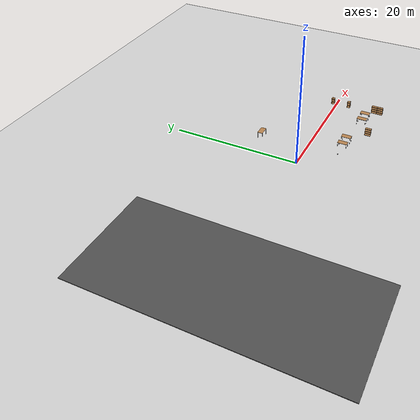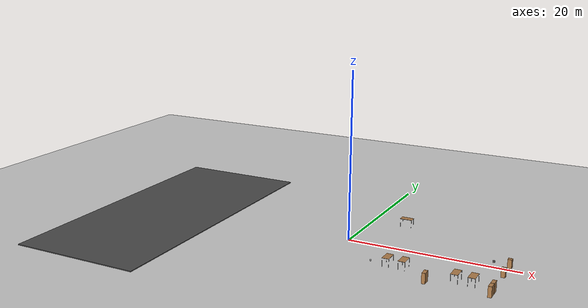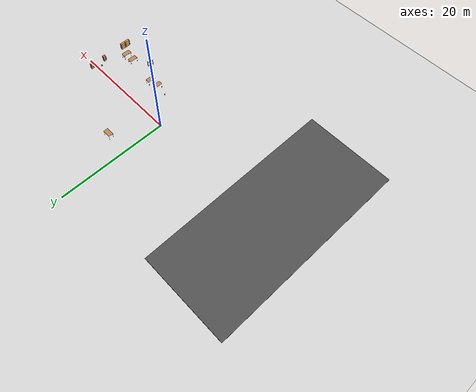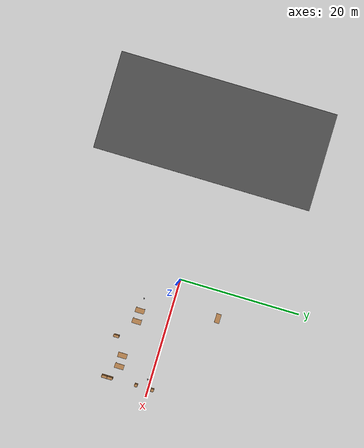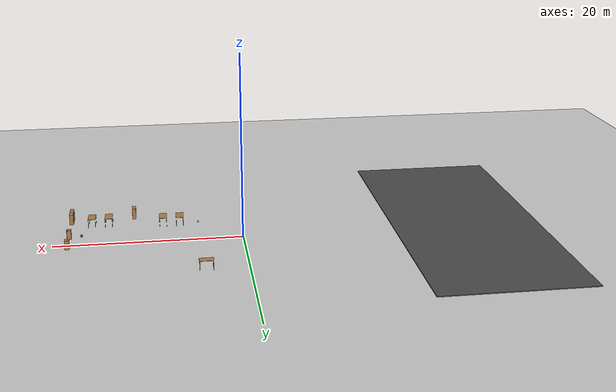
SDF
<sdf version="1.7">
 <world name="default">
  <model name="ground_plane">
   <static>1</static>
   <link name="link">
    <collision name="collision">
     <geometry><plane><normal>0 0 1</normal><size>100 100</size></plane></geometry>
     <surface>
      <contact><collide_bitmask>65535</collide_bitmask></contact>
      <friction><ode><mu>100</mu><mu2>50</mu2></ode></friction>
     </surface>
    </collision>
    <visual name="visual">
     <cast_shadows>0</cast_shadows>
     <geometry><plane><normal>0 0 1</normal><size>100 100</size></plane></geometry>
     <material>
      <script><uri>file://media/materials/scripts/gazebo.material</uri><name>Gazebo/Grey</name></script>
     </material>
    </visual>
   </link>
  </model>
  <model name="myBall">
   <link name="link_0">
    <inertial>
     <mass>10</mass>
     <inertia><ixx>1</ixx><ixy>0</ixy><ixz>0</ixz><iyy>1</iyy><iyz>0</iyz><izz>1</izz></inertia>
    </inertial>
    <visual name="visual">
     <geometry><sphere><radius>0.1</radius></sphere></geometry>
     <material>
      <lighting>1</lighting>
      <script><uri>file://media/materials/scripts/gazebo.material</uri><name>Gazebo/Grey</name></script>
      <shader type="pixel"><normal_map>__default__</normal_map></shader>
      <ambient>1 1 1 1</ambient>
      <diffuse>1 1 1 1</diffuse>
      <specular>1 1 1 1</specular>
      <emissive>1 1 1 1</emissive>
     </material>
    </visual>
    <collision name="collision">
     <geometry><sphere><radius>0.1</radius></sphere></geometry>
     <surface>
      <friction>
       <ode><mu>1</mu><mu2>1</mu2><fdir1>0 0 0</fdir1><slip1>0</slip1><slip2>0</slip2></ode>
       <torsional>
        <coefficient>1</coefficient>
        <patch_radius>0</patch_radius>
        <surface_radius>0</surface_radius>
        <use_patch_radius>1</use_patch_radius>
        <ode><slip>0</slip></ode>
       </torsional>
      </friction>
      <bounce><restitution_coefficient>0</restitution_coefficient><threshold>1e+06</threshold></bounce>
      <contact>
       <collide_without_contact>0</collide_without_contact>
       <collide_without_contact_bitmask>1</collide_without_contact_bitmask>
       <collide_bitmask>1</collide_bitmask>
       <ode>
        <soft_cfm>0</soft_cfm>
        <soft_erp>0.2</soft_erp>
        <kp>1e+13</kp>
        <kd>1</kd>
        <max_vel>0.01</max_vel>
        <min_depth>0</min_depth>
       </ode>
       <bullet>
        <split_impulse>1</split_impulse>
        <split_impulse_penetration_threshold>-0.01</split_impulse_penetration_threshold>
        <soft_cfm>0</soft_cfm>
        <soft_erp>0.2</soft_erp>
        <kp>1e+13</kp>
        <kd>1</kd>
       </bullet>
      </contact>
     </surface>
    </collision>
   </link>
   <static>0</static>
   <pose>4.64987 -4.7603 0.142835 0 -0 0</pose>
  </model>
  <model name="asphalt_plane">
   <static>1</static>
   <link name="link">
    <collision name="collision"><geometry><box><size>16.2909 36.5058 0.1</size></box></geometry></collision>
    <visual name="visual">
     <cast_shadows>0</cast_shadows>
     <geometry><box><size>16.2909 36.5058 0.1</size></box></geometry>
     <material>
      <script>
       <uri>model://asphalt_plane/materials/scripts</uri>
       <uri>model://asphalt_plane/materials/textures</uri>
       <name>vrc/asphalt</name>
      </script>
     </material>
    </visual>
   </link>
   <pose>-24.6928 -1.37234 0 0 -0 0</pose>
  </model>
  <model name="bookshelf_clone_2">
   <static>1</static>
   <link name="link">
    <inertial><mass>1</mass></inertial>
    <collision name="back">
     <pose>0 0.005 0.6 0 -0 0</pose>
     <geometry><box><size>0.9 0.01 1.2</size></box></geometry>
    </collision>
    <visual name="visual1">
     <pose>0 0.005 0.6 0 -0 0</pose>
     <geometry><box><size>0.9 0.01 1.2</size></box></geometry>
     <material>
      <script><uri>file://media/materials/scripts/gazebo.material</uri><name>Gazebo/Wood</name></script>
     </material>
    </visual>
    <collision name="left_side">
     <pose>0.45 -0.195 0.6 0 -0 0</pose>
     <geometry><box><size>0.02 0.4 1.2</size></box></geometry>
    </collision>
    <visual name="visual2">
     <pose>0.45 -0.195 0.6 0 -0 0</pose>
     <geometry><box><size>0.02 0.4 1.2</size></box></geometry>
     <material>
      <script><uri>file://media/materials/scripts/gazebo.material</uri><name>Gazebo/Wood</name></script>
     </material>
    </visual>
    <collision name="right_side">
     <pose>-0.45 -0.195 0.6 0 -0 0</pose>
     <geometry><box><size>0.02 0.4 1.2</size></box></geometry>
    </collision>
    <visual name="visual3">
     <pose>-0.45 -0.195 0.6 0 -0 0</pose>
     <geometry><box><size>0.02 0.4 1.2</size></box></geometry>
     <material>
      <script><uri>file://media/materials/scripts/gazebo.material</uri><name>Gazebo/Wood</name></script>
     </material>
    </visual>
    <collision name="bottom">
     <pose>0 -0.195 0.03 0 -0 0</pose>
     <geometry><box><size>0.88 0.4 0.06</size></box></geometry>
    </collision>
    <visual name="visual4">
     <pose>0 -0.195 0.03 0 -0 0</pose>
     <geometry><box><size>0.88 0.4 0.06</size></box></geometry>
     <material>
      <script><uri>file://media/materials/scripts/gazebo.material</uri><name>Gazebo/Wood</name></script>
     </material>
    </visual>
    <collision name="top">
     <pose>0 -0.195 1.19 0 -0 0</pose>
     <geometry><box><size>0.88 0.4 0.02</size></box></geometry>
    </collision>
    <visual name="visual5">
     <pose>0 -0.195 1.19 0 -0 0</pose>
     <geometry><box><size>0.88 0.4 0.02</size></box></geometry>
     <material>
      <script><uri>file://media/materials/scripts/gazebo.material</uri><name>Gazebo/Wood</name></script>
     </material>
    </visual>
    <collision name="low_shelf">
     <pose>0 -0.195 0.43 0 -0 0</pose>
     <geometry><box><size>0.88 0.4 0.02</size></box></geometry>
    </collision>
    <visual name="visual6">
     <pose>0 -0.195 0.43 0 -0 0</pose>
     <geometry><box><size>0.88 0.4 0.02</size></box></geometry>
     <material>
      <script><uri>file://media/materials/scripts/gazebo.material</uri><name>Gazebo/Wood</name></script>
     </material>
    </visual>
    <collision name="high_shelf">
     <pose>0 -0.195 0.8 0 -0 0</pose>
     <geometry><box><size>0.88 0.4 0.02</size></box></geometry>
    </collision>
    <visual name="visual7">
     <pose>0 -0.195 0.8 0 -0 0</pose>
     <geometry><box><size>0.88 0.4 0.02</size></box></geometry>
     <material>
      <script><uri>file://media/materials/scripts/gazebo.material</uri><name>Gazebo/Wood</name></script>
     </material>
    </visual>
   </link>
   <pose>18.6839 -7.31566 0 0 0 -1.57057</pose>
  </model>
  <model name="bookshelf_clone_3">
   <static>1</static>
   <link name="link">
    <inertial><mass>1</mass></inertial>
    <collision name="back">
     <pose>0 0.005 0.6 0 -0 0</pose>
     <geometry><box><size>0.9 0.01 1.2</size></box></geometry>
    </collision>
    <visual name="visual1">
     <pose>0 0.005 0.6 0 -0 0</pose>
     <geometry><box><size>0.9 0.01 1.2</size></box></geometry>
     <material>
      <script><uri>file://media/materials/scripts/gazebo.material</uri><name>Gazebo/Wood</name></script>
     </material>
    </visual>
    <collision name="left_side">
     <pose>0.45 -0.195 0.6 0 -0 0</pose>
     <geometry><box><size>0.02 0.4 1.2</size></box></geometry>
    </collision>
    <visual name="visual2">
     <pose>0.45 -0.195 0.6 0 -0 0</pose>
     <geometry><box><size>0.02 0.4 1.2</size></box></geometry>
     <material>
      <script><uri>file://media/materials/scripts/gazebo.material</uri><name>Gazebo/Wood</name></script>
     </material>
    </visual>
    <collision name="right_side">
     <pose>-0.45 -0.195 0.6 0 -0 0</pose>
     <geometry><box><size>0.02 0.4 1.2</size></box></geometry>
    </collision>
    <visual name="visual3">
     <pose>-0.45 -0.195 0.6 0 -0 0</pose>
     <geometry><box><size>0.02 0.4 1.2</size></box></geometry>
     <material>
      <script><uri>file://media/materials/scripts/gazebo.material</uri><name>Gazebo/Wood</name></script>
     </material>
    </visual>
    <collision name="bottom">
     <pose>0 -0.195 0.03 0 -0 0</pose>
     <geometry><box><size>0.88 0.4 0.06</size></box></geometry>
    </collision>
    <visual name="visual4">
     <pose>0 -0.195 0.03 0 -0 0</pose>
     <geometry><box><size>0.88 0.4 0.06</size></box></geometry>
     <material>
      <script><uri>file://media/materials/scripts/gazebo.material</uri><name>Gazebo/Wood</name></script>
     </material>
    </visual>
    <collision name="top">
     <pose>0 -0.195 1.19 0 -0 0</pose>
     <geometry><box><size>0.88 0.4 0.02</size></box></geometry>
    </collision>
    <visual name="visual5">
     <pose>0 -0.195 1.19 0 -0 0</pose>
     <geometry><box><size>0.88 0.4 0.02</size></box></geometry>
     <material>
      <script><uri>file://media/materials/scripts/gazebo.material</uri><name>Gazebo/Wood</name></script>
     </material>
    </visual>
    <collision name="low_shelf">
     <pose>0 -0.195 0.43 0 -0 0</pose>
     <geometry><box><size>0.88 0.4 0.02</size></box></geometry>
    </collision>
    <visual name="visual6">
     <pose>0 -0.195 0.43 0 -0 0</pose>
     <geometry><box><size>0.88 0.4 0.02</size></box></geometry>
     <material>
      <script><uri>file://media/materials/scripts/gazebo.material</uri><name>Gazebo/Wood</name></script>
     </material>
    </visual>
    <collision name="high_shelf">
     <pose>0 -0.195 0.8 0 -0 0</pose>
     <geometry><box><size>0.88 0.4 0.02</size></box></geometry>
    </collision>
    <visual name="visual7">
     <pose>0 -0.195 0.8 0 -0 0</pose>
     <geometry><box><size>0.88 0.4 0.02</size></box></geometry>
     <material>
      <script><uri>file://media/materials/scripts/gazebo.material</uri><name>Gazebo/Wood</name></script>
     </material>
    </visual>
   </link>
   <pose>18.6876 -6.40125 0 0 0 -1.57057</pose>
  </model>
  <model name="bookshelf_clone_8">
   <static>1</static>
   <link name="link">
    <inertial><mass>1</mass></inertial>
    <collision name="back">
     <pose>0 0.005 0.6 0 -0 0</pose>
     <geometry><box><size>0.9 0.01 1.2</size></box></geometry>
    </collision>
    <visual name="visual1">
     <pose>0 0.005 0.6 0 -0 0</pose>
     <geometry><box><size>0.9 0.01 1.2</size></box></geometry>
     <material>
      <script><uri>file://media/materials/scripts/gazebo.material</uri><name>Gazebo/Wood</name></script>
     </material>
    </visual>
    <collision name="left_side">
     <pose>0.45 -0.195 0.6 0 -0 0</pose>
     <geometry><box><size>0.02 0.4 1.2</size></box></geometry>
    </collision>
    <visual name="visual2">
     <pose>0.45 -0.195 0.6 0 -0 0</pose>
     <geometry><box><size>0.02 0.4 1.2</size></box></geometry>
     <material>
      <script><uri>file://media/materials/scripts/gazebo.material</uri><name>Gazebo/Wood</name></script>
     </material>
    </visual>
    <collision name="right_side">
     <pose>-0.45 -0.195 0.6 0 -0 0</pose>
     <geometry><box><size>0.02 0.4 1.2</size></box></geometry>
    </collision>
    <visual name="visual3">
     <pose>-0.45 -0.195 0.6 0 -0 0</pose>
     <geometry><box><size>0.02 0.4 1.2</size></box></geometry>
     <material>
      <script><uri>file://media/materials/scripts/gazebo.material</uri><name>Gazebo/Wood</name></script>
     </material>
    </visual>
    <collision name="bottom">
     <pose>0 -0.195 0.03 0 -0 0</pose>
     <geometry><box><size>0.88 0.4 0.06</size></box></geometry>
    </collision>
    <visual name="visual4">
     <pose>0 -0.195 0.03 0 -0 0</pose>
     <geometry><box><size>0.88 0.4 0.06</size></box></geometry>
     <material>
      <script><uri>file://media/materials/scripts/gazebo.material</uri><name>Gazebo/Wood</name></script>
     </material>
    </visual>
    <collision name="top">
     <pose>0 -0.195 1.19 0 -0 0</pose>
     <geometry><box><size>0.88 0.4 0.02</size></box></geometry>
    </collision>
    <visual name="visual5">
     <pose>0 -0.195 1.19 0 -0 0</pose>
     <geometry><box><size>0.88 0.4 0.02</size></box></geometry>
     <material>
      <script><uri>file://media/materials/scripts/gazebo.material</uri><name>Gazebo/Wood</name></script>
     </material>
    </visual>
    <collision name="low_shelf">
     <pose>0 -0.195 0.43 0 -0 0</pose>
     <geometry><box><size>0.88 0.4 0.02</size></box></geometry>
    </collision>
    <visual name="visual6">
     <pose>0 -0.195 0.43 0 -0 0</pose>
     <geometry><box><size>0.88 0.4 0.02</size></box></geometry>
     <material>
      <script><uri>file://media/materials/scripts/gazebo.material</uri><name>Gazebo/Wood</name></script>
     </material>
    </visual>
    <collision name="high_shelf">
     <pose>0 -0.195 0.8 0 -0 0</pose>
     <geometry><box><size>0.88 0.4 0.02</size></box></geometry>
    </collision>
    <visual name="visual7">
     <pose>0 -0.195 0.8 0 -0 0</pose>
     <geometry><box><size>0.88 0.4 0.02</size></box></geometry>
     <material>
      <script><uri>file://media/materials/scripts/gazebo.material</uri><name>Gazebo/Wood</name></script>
     </material>
    </visual>
   </link>
   <pose>11.8617 -7.31522 0 0 0 -1.57057</pose>
  </model>
  <model name="table_clone_clone">
   <static>1</static>
   <link name="link">
    <collision name="surface">
     <pose>0 0 1 0 -0 0</pose>
     <geometry><box><size>1.5 0.8 0.03</size></box></geometry>
     <surface><friction><ode><mu>0.6</mu><mu2>0.6</mu2></ode></friction></surface>
    </collision>
    <visual name="visual1">
     <pose>0 0 1 0 -0 0</pose>
     <geometry><box><size>1.5 0.8 0.03</size></box></geometry>
     <material>
      <script><uri>file://media/materials/scripts/gazebo.material</uri><name>Gazebo/Wood</name></script>
     </material>
    </visual>
    <collision name="front_left_leg">
     <pose>0.68 0.38 0.5 0 -0 0</pose>
     <geometry><cylinder><radius>0.02</radius><length>1</length></cylinder></geometry>
    </collision>
    <visual name="front_left_leg">
     <pose>0.68 0.38 0.5 0 -0 0</pose>
     <geometry><cylinder><radius>0.02</radius><length>1</length></cylinder></geometry>
     <material>
      <script><uri>file://media/materials/scripts/gazebo.material</uri><name>Gazebo/Grey</name></script>
     </material>
    </visual>
    <collision name="front_right_leg">
     <pose>0.68 -0.38 0.5 0 -0 0</pose>
     <geometry><cylinder><radius>0.02</radius><length>1</length></cylinder></geometry>
    </collision>
    <visual name="front_right_leg">
     <pose>0.68 -0.38 0.5 0 -0 0</pose>
     <geometry><cylinder><radius>0.02</radius><length>1</length></cylinder></geometry>
     <material>
      <script><uri>file://media/materials/scripts/gazebo.material</uri><name>Gazebo/Grey</name></script>
     </material>
    </visual>
    <collision name="back_right_leg">
     <pose>-0.68 -0.38 0.5 0 -0 0</pose>
     <geometry><cylinder><radius>0.02</radius><length>1</length></cylinder></geometry>
    </collision>
    <visual name="back_right_leg">
     <pose>-0.68 -0.38 0.5 0 -0 0</pose>
     <geometry><cylinder><radius>0.02</radius><length>1</length></cylinder></geometry>
     <material>
      <script><uri>file://media/materials/scripts/gazebo.material</uri><name>Gazebo/Grey</name></script>
     </material>
    </visual>
    <collision name="back_left_leg">
     <pose>-0.68 0.38 0.5 0 -0 0</pose>
     <geometry><cylinder><radius>0.02</radius><length>1</length></cylinder></geometry>
    </collision>
    <visual name="back_left_leg">
     <pose>-0.68 0.38 0.5 0 -0 0</pose>
     <geometry><cylinder><radius>0.02</radius><length>1</length></cylinder></geometry>
     <material>
      <script><uri>file://media/materials/scripts/gazebo.material</uri><name>Gazebo/Grey</name></script>
     </material>
    </visual>
   </link>
   <pose>4.31345 7.61468 0 0 -0 0</pose>
  </model>
  <model name="table_clone_0_clone_clone_1">
   <static>1</static>
   <link name="link">
    <collision name="surface">
     <pose>0 0 1 0 -0 0</pose>
     <geometry><box><size>1.5 0.8 0.03</size></box></geometry>
     <surface><friction><ode><mu>0.6</mu><mu2>0.6</mu2></ode></friction></surface>
    </collision>
    <visual name="visual1">
     <pose>0 0 1 0 -0 0</pose>
     <geometry><box><size>1.5 0.8 0.03</size></box></geometry>
     <material>
      <script><uri>file://media/materials/scripts/gazebo.material</uri><name>Gazebo/Wood</name></script>
     </material>
    </visual>
    <collision name="front_left_leg">
     <pose>0.68 0.38 0.5 0 -0 0</pose>
     <geometry><cylinder><radius>0.02</radius><length>1</length></cylinder></geometry>
    </collision>
    <visual name="front_left_leg">
     <pose>0.68 0.38 0.5 0 -0 0</pose>
     <geometry><cylinder><radius>0.02</radius><length>1</length></cylinder></geometry>
     <material>
      <script><uri>file://media/materials/scripts/gazebo.material</uri><name>Gazebo/Grey</name></script>
     </material>
    </visual>
    <collision name="front_right_leg">
     <pose>0.68 -0.38 0.5 0 -0 0</pose>
     <geometry><cylinder><radius>0.02</radius><length>1</length></cylinder></geometry>
    </collision>
    <visual name="front_right_leg">
     <pose>0.68 -0.38 0.5 0 -0 0</pose>
     <geometry><cylinder><radius>0.02</radius><length>1</length></cylinder></geometry>
     <material>
      <script><uri>file://media/materials/scripts/gazebo.material</uri><name>Gazebo/Grey</name></script>
     </material>
    </visual>
    <collision name="back_right_leg">
     <pose>-0.68 -0.38 0.5 0 -0 0</pose>
     <geometry><cylinder><radius>0.02</radius><length>1</length></cylinder></geometry>
    </collision>
    <visual name="back_right_leg">
     <pose>-0.68 -0.38 0.5 0 -0 0</pose>
     <geometry><cylinder><radius>0.02</radius><length>1</length></cylinder></geometry>
     <material>
      <script><uri>file://media/materials/scripts/gazebo.material</uri><name>Gazebo/Grey</name></script>
     </material>
    </visual>
    <collision name="back_left_leg">
     <pose>-0.68 0.38 0.5 0 -0 0</pose>
     <geometry><cylinder><radius>0.02</radius><length>1</length></cylinder></geometry>
    </collision>
    <visual name="back_left_leg">
     <pose>-0.68 0.38 0.5 0 -0 0</pose>
     <geometry><cylinder><radius>0.02</radius><length>1</length></cylinder></geometry>
     <material>
      <script><uri>file://media/materials/scripts/gazebo.material</uri><name>Gazebo/Grey</name></script>
     </material>
    </visual>
   </link>
   <pose>8.47482 -4.80973 0 0 0 -1.57488</pose>
  </model>
  <model name="table_clone_0_clone_clone_2">
   <static>1</static>
   <link name="link">
    <collision name="surface">
     <pose>0 0 1 0 -0 0</pose>
     <geometry><box><size>1.5 0.8 0.03</size></box></geometry>
     <surface><friction><ode><mu>0.6</mu><mu2>0.6</mu2></ode></friction></surface>
    </collision>
    <visual name="visual1">
     <pose>0 0 1 0 -0 0</pose>
     <geometry><box><size>1.5 0.8 0.03</size></box></geometry>
     <material>
      <script><uri>file://media/materials/scripts/gazebo.material</uri><name>Gazebo/Wood</name></script>
     </material>
    </visual>
    <collision name="front_left_leg">
     <pose>0.68 0.38 0.5 0 -0 0</pose>
     <geometry><cylinder><radius>0.02</radius><length>1</length></cylinder></geometry>
    </collision>
    <visual name="front_left_leg">
     <pose>0.68 0.38 0.5 0 -0 0</pose>
     <geometry><cylinder><radius>0.02</radius><length>1</length></cylinder></geometry>
     <material>
      <script><uri>file://media/materials/scripts/gazebo.material</uri><name>Gazebo/Grey</name></script>
     </material>
    </visual>
    <collision name="front_right_leg">
     <pose>0.68 -0.38 0.5 0 -0 0</pose>
     <geometry><cylinder><radius>0.02</radius><length>1</length></cylinder></geometry>
    </collision>
    <visual name="front_right_leg">
     <pose>0.68 -0.38 0.5 0 -0 0</pose>
     <geometry><cylinder><radius>0.02</radius><length>1</length></cylinder></geometry>
     <material>
      <script><uri>file://media/materials/scripts/gazebo.material</uri><name>Gazebo/Grey</name></script>
     </material>
    </visual>
    <collision name="back_right_leg">
     <pose>-0.68 -0.38 0.5 0 -0 0</pose>
     <geometry><cylinder><radius>0.02</radius><length>1</length></cylinder></geometry>
    </collision>
    <visual name="back_right_leg">
     <pose>-0.68 -0.38 0.5 0 -0 0</pose>
     <geometry><cylinder><radius>0.02</radius><length>1</length></cylinder></geometry>
     <material>
      <script><uri>file://media/materials/scripts/gazebo.material</uri><name>Gazebo/Grey</name></script>
     </material>
    </visual>
    <collision name="back_left_leg">
     <pose>-0.68 0.38 0.5 0 -0 0</pose>
     <geometry><cylinder><radius>0.02</radius><length>1</length></cylinder></geometry>
    </collision>
    <visual name="back_left_leg">
     <pose>-0.68 0.38 0.5 0 -0 0</pose>
     <geometry><cylinder><radius>0.02</radius><length>1</length></cylinder></geometry>
     <material>
      <script><uri>file://media/materials/scripts/gazebo.material</uri><name>Gazebo/Grey</name></script>
     </material>
    </visual>
   </link>
   <pose>6.65252 -4.80411 0 0 0 -1.57488</pose>
  </model>
  <model name="table_clone_0_clone_clone_0_clone_1">
   <static>1</static>
   <link name="link">
    <collision name="surface">
     <pose>0 0 1 0 -0 0</pose>
     <geometry><box><size>1.5 0.8 0.03</size></box></geometry>
     <surface><friction><ode><mu>0.6</mu><mu2>0.6</mu2></ode></friction></surface>
    </collision>
    <visual name="visual1">
     <pose>0 0 1 0 -0 0</pose>
     <geometry><box><size>1.5 0.8 0.03</size></box></geometry>
     <material>
      <script><uri>file://media/materials/scripts/gazebo.material</uri><name>Gazebo/Wood</name></script>
     </material>
    </visual>
    <collision name="front_left_leg">
     <pose>0.68 0.38 0.5 0 -0 0</pose>
     <geometry><cylinder><radius>0.02</radius><length>1</length></cylinder></geometry>
    </collision>
    <visual name="front_left_leg">
     <pose>0.68 0.38 0.5 0 -0 0</pose>
     <geometry><cylinder><radius>0.02</radius><length>1</length></cylinder></geometry>
     <material>
      <script><uri>file://media/materials/scripts/gazebo.material</uri><name>Gazebo/Grey</name></script>
     </material>
    </visual>
    <collision name="front_right_leg">
     <pose>0.68 -0.38 0.5 0 -0 0</pose>
     <geometry><cylinder><radius>0.02</radius><length>1</length></cylinder></geometry>
    </collision>
    <visual name="front_right_leg">
     <pose>0.68 -0.38 0.5 0 -0 0</pose>
     <geometry><cylinder><radius>0.02</radius><length>1</length></cylinder></geometry>
     <material>
      <script><uri>file://media/materials/scripts/gazebo.material</uri><name>Gazebo/Grey</name></script>
     </material>
    </visual>
    <collision name="back_right_leg">
     <pose>-0.68 -0.38 0.5 0 -0 0</pose>
     <geometry><cylinder><radius>0.02</radius><length>1</length></cylinder></geometry>
    </collision>
    <visual name="back_right_leg">
     <pose>-0.68 -0.38 0.5 0 -0 0</pose>
     <geometry><cylinder><radius>0.02</radius><length>1</length></cylinder></geometry>
     <material>
      <script><uri>file://media/materials/scripts/gazebo.material</uri><name>Gazebo/Grey</name></script>
     </material>
    </visual>
    <collision name="back_left_leg">
     <pose>-0.68 0.38 0.5 0 -0 0</pose>
     <geometry><cylinder><radius>0.02</radius><length>1</length></cylinder></geometry>
    </collision>
    <visual name="back_left_leg">
     <pose>-0.68 0.38 0.5 0 -0 0</pose>
     <geometry><cylinder><radius>0.02</radius><length>1</length></cylinder></geometry>
     <material>
      <script><uri>file://media/materials/scripts/gazebo.material</uri><name>Gazebo/Grey</name></script>
     </material>
    </visual>
   </link>
   <pose>16.2155 -5.45535 0 0 0 -1.57488</pose>
  </model>
  <model name="table_clone_0_clone_clone_0_clone_2">
   <static>1</static>
   <link name="link">
    <collision name="surface">
     <pose>0 0 1 0 -0 0</pose>
     <geometry><box><size>1.5 0.8 0.03</size></box></geometry>
     <surface><friction><ode><mu>0.6</mu><mu2>0.6</mu2></ode></friction></surface>
    </collision>
    <visual name="visual1">
     <pose>0 0 1 0 -0 0</pose>
     <geometry><box><size>1.5 0.8 0.03</size></box></geometry>
     <material>
      <script><uri>file://media/materials/scripts/gazebo.material</uri><name>Gazebo/Wood</name></script>
     </material>
    </visual>
    <collision name="front_left_leg">
     <pose>0.68 0.38 0.5 0 -0 0</pose>
     <geometry><cylinder><radius>0.02</radius><length>1</length></cylinder></geometry>
    </collision>
    <visual name="front_left_leg">
     <pose>0.68 0.38 0.5 0 -0 0</pose>
     <geometry><cylinder><radius>0.02</radius><length>1</length></cylinder></geometry>
     <material>
      <script><uri>file://media/materials/scripts/gazebo.material</uri><name>Gazebo/Grey</name></script>
     </material>
    </visual>
    <collision name="front_right_leg">
     <pose>0.68 -0.38 0.5 0 -0 0</pose>
     <geometry><cylinder><radius>0.02</radius><length>1</length></cylinder></geometry>
    </collision>
    <visual name="front_right_leg">
     <pose>0.68 -0.38 0.5 0 -0 0</pose>
     <geometry><cylinder><radius>0.02</radius><length>1</length></cylinder></geometry>
     <material>
      <script><uri>file://media/materials/scripts/gazebo.material</uri><name>Gazebo/Grey</name></script>
     </material>
    </visual>
    <collision name="back_right_leg">
     <pose>-0.68 -0.38 0.5 0 -0 0</pose>
     <geometry><cylinder><radius>0.02</radius><length>1</length></cylinder></geometry>
    </collision>
    <visual name="back_right_leg">
     <pose>-0.68 -0.38 0.5 0 -0 0</pose>
     <geometry><cylinder><radius>0.02</radius><length>1</length></cylinder></geometry>
     <material>
      <script><uri>file://media/materials/scripts/gazebo.material</uri><name>Gazebo/Grey</name></script>
     </material>
    </visual>
    <collision name="back_left_leg">
     <pose>-0.68 0.38 0.5 0 -0 0</pose>
     <geometry><cylinder><radius>0.02</radius><length>1</length></cylinder></geometry>
    </collision>
    <visual name="back_left_leg">
     <pose>-0.68 0.38 0.5 0 -0 0</pose>
     <geometry><cylinder><radius>0.02</radius><length>1</length></cylinder></geometry>
     <material>
      <script><uri>file://media/materials/scripts/gazebo.material</uri><name>Gazebo/Grey</name></script>
     </material>
    </visual>
   </link>
   <pose>14.4005 -5.46082 0 0 0 -1.57488</pose>
  </model>
  <model name="beer">
   <link name="link">
    <pose>0 0 0.115 0 -0 0</pose>
    <inertial>
     <mass>0.39</mass>
     <inertia><ixx>0.00058</ixx><ixy>0</ixy><ixz>0</ixz><iyy>0.00058</iyy><iyz>0</iyz><izz>0.00019</izz></inertia>
    </inertial>
    <collision name="collision">
     <geometry><cylinder><radius>0.055</radius><length>0.23</length></cylinder></geometry>
    </collision>
    <visual name="visual">
     <geometry><cylinder><radius>0.055</radius><length>0.23</length></cylinder></geometry>
     <material>
      <script>
       <uri>model://beer/materials/scripts</uri>
       <uri>model://beer/materials/textures</uri>
       <name>Beer/Diffuse</name>
      </script>
     </material>
    </visual>
   </link>
   <pose>17.0555 -0.477548 0.777824 0 -0 0</pose>
  </model>
  <model name="cabinet">
   <static>1</static>
   <link name="cabinet_bottom_plate">
    <inertial>
     <pose>0 0 -1 0 -0 0</pose>
     <inertia><ixx>2.05</ixx><ixy>0</ixy><ixz>0</ixz><iyy>2.05</iyy><iyz>0</iyz><izz>2.05</izz></inertia>
     <mass>25</mass>
    </inertial>
    <collision name="cabinet_bottom_plate_geom">
     <pose>0 0 0.01 0 -0 0</pose>
     <geometry><box><size>0.45 0.45 0.02</size></box></geometry>
    </collision>
    <visual name="cabinet_bottom_plate_geom_visual">
     <pose>0 0 0.01 0 -0 0</pose>
     <geometry><box><size>0.45 0.45 0.02</size></box></geometry>
     <material>
      <script><uri>file://media/materials/scripts/gazebo.material</uri><name>Gazebo/Wood</name></script>
     </material>
    </visual>
    <collision name="cabinet_bottom_plate_geom_cabinet_back_plate">
     <pose>0.235 0 0.51 0 -0 0</pose>
     <geometry><box><size>0.02 0.45 1.02</size></box></geometry>
    </collision>
    <visual name="cabinet_bottom_plate_geom_cabinet_back_plate_visual">
     <pose>0.235 0 0.51 0 -0 0</pose>
     <geometry><box><size>0.02 0.45 1.02</size></box></geometry>
     <material>
      <script><uri>file://media/materials/scripts/gazebo.material</uri><name>Gazebo/Wood</name></script>
     </material>
    </visual>
    <collision name="cabinet_bottom_plate_geom_cabinet_left_plate">
     <pose>0 0.235 0.51 0 -0 0</pose>
     <geometry><box><size>0.45 0.02 1.02</size></box></geometry>
    </collision>
    <visual name="cabinet_bottom_plate_geom_cabinet_left_plate_visual">
     <pose>0 0.235 0.51 0 -0 0</pose>
     <geometry><box><size>0.45 0.02 1.02</size></box></geometry>
     <material>
      <script><uri>file://media/materials/scripts/gazebo.material</uri><name>Gazebo/Wood</name></script>
     </material>
    </visual>
    <collision name="cabinet_bottom_plate_geom_cabinet_middle_plate">
     <pose>0 0 0.51 0 -0 0</pose>
     <geometry><box><size>0.45 0.45 0.02</size></box></geometry>
    </collision>
    <visual name="cabinet_bottom_plate_geom_cabinet_middle_plate_visual">
     <pose>0 0 0.51 0 -0 0</pose>
     <geometry><box><size>0.45 0.45 0.02</size></box></geometry>
     <material>
      <script><uri>file://media/materials/scripts/gazebo.material</uri><name>Gazebo/Wood</name></script>
     </material>
    </visual>
    <collision name="cabinet_bottom_plate_geom_cabinet_right_plate">
     <pose>0 -0.235 0.51 0 -0 0</pose>
     <geometry><box><size>0.45 0.02 1.02</size></box></geometry>
    </collision>
    <visual name="cabinet_bottom_plate_geom_cabinet_right_plate_visual">
     <pose>0 -0.235 0.51 0 -0 0</pose>
     <geometry><box><size>0.45 0.02 1.02</size></box></geometry>
     <material>
      <script><uri>file://media/materials/scripts/gazebo.material</uri><name>Gazebo/Wood</name></script>
     </material>
    </visual>
    <collision name="cabinet_bottom_plate_geom_cabinet_top_plate">
     <pose>0 0 1.01 0 -0 0</pose>
     <geometry><box><size>0.45 0.45 0.02</size></box></geometry>
    </collision>
    <visual name="cabinet_bottom_plate_geom_cabinet_top_plate_visual">
     <pose>0 0 1.01 0 -0 0</pose>
     <geometry><box><size>0.45 0.45 0.02</size></box></geometry>
     <material>
      <script><uri>file://media/materials/scripts/gazebo.material</uri><name>Gazebo/Wood</name></script>
     </material>
    </visual>
   </link>
   <pose>18.435 0.729999 0 0 -0 0</pose>
  </model>
  <model name="cabinet_clone">
   <static>1</static>
   <link name="cabinet_bottom_plate">
    <inertial>
     <pose>0 0 -1 0 -0 0</pose>
     <inertia><ixx>2.05</ixx><ixy>0</ixy><ixz>0</ixz><iyy>2.05</iyy><iyz>0</iyz><izz>2.05</izz></inertia>
     <mass>25</mass>
    </inertial>
    <collision name="cabinet_bottom_plate_geom">
     <pose>0 0 0.01 0 -0 0</pose>
     <geometry><box><size>0.45 0.45 0.02</size></box></geometry>
    </collision>
    <visual name="cabinet_bottom_plate_geom_visual">
     <pose>0 0 0.01 0 -0 0</pose>
     <geometry><box><size>0.45 0.45 0.02</size></box></geometry>
     <material>
      <script><uri>file://media/materials/scripts/gazebo.material</uri><name>Gazebo/Wood</name></script>
     </material>
    </visual>
    <collision name="cabinet_bottom_plate_geom_cabinet_back_plate">
     <pose>0.235 0 0.51 0 -0 0</pose>
     <geometry><box><size>0.02 0.45 1.02</size></box></geometry>
    </collision>
    <visual name="cabinet_bottom_plate_geom_cabinet_back_plate_visual">
     <pose>0.235 0 0.51 0 -0 0</pose>
     <geometry><box><size>0.02 0.45 1.02</size></box></geometry>
     <material>
      <script><uri>file://media/materials/scripts/gazebo.material</uri><name>Gazebo/Wood</name></script>
     </material>
    </visual>
    <collision name="cabinet_bottom_plate_geom_cabinet_left_plate">
     <pose>0 0.235 0.51 0 -0 0</pose>
     <geometry><box><size>0.45 0.02 1.02</size></box></geometry>
    </collision>
    <visual name="cabinet_bottom_plate_geom_cabinet_left_plate_visual">
     <pose>0 0.235 0.51 0 -0 0</pose>
     <geometry><box><size>0.45 0.02 1.02</size></box></geometry>
     <material>
      <script><uri>file://media/materials/scripts/gazebo.material</uri><name>Gazebo/Wood</name></script>
     </material>
    </visual>
    <collision name="cabinet_bottom_plate_geom_cabinet_middle_plate">
     <pose>0 0 0.51 0 -0 0</pose>
     <geometry><box><size>0.45 0.45 0.02</size></box></geometry>
    </collision>
    <visual name="cabinet_bottom_plate_geom_cabinet_middle_plate_visual">
     <pose>0 0 0.51 0 -0 0</pose>
     <geometry><box><size>0.45 0.45 0.02</size></box></geometry>
     <material>
      <script><uri>file://media/materials/scripts/gazebo.material</uri><name>Gazebo/Wood</name></script>
     </material>
    </visual>
    <collision name="cabinet_bottom_plate_geom_cabinet_right_plate">
     <pose>0 -0.235 0.51 0 -0 0</pose>
     <geometry><box><size>0.45 0.02 1.02</size></box></geometry>
    </collision>
    <visual name="cabinet_bottom_plate_geom_cabinet_right_plate_visual">
     <pose>0 -0.235 0.51 0 -0 0</pose>
     <geometry><box><size>0.45 0.02 1.02</size></box></geometry>
     <material>
      <script><uri>file://media/materials/scripts/gazebo.material</uri><name>Gazebo/Wood</name></script>
     </material>
    </visual>
    <collision name="cabinet_bottom_plate_geom_cabinet_top_plate">
     <pose>0 0 1.01 0 -0 0</pose>
     <geometry><box><size>0.45 0.45 0.02</size></box></geometry>
    </collision>
    <visual name="cabinet_bottom_plate_geom_cabinet_top_plate_visual">
     <pose>0 0 1.01 0 -0 0</pose>
     <geometry><box><size>0.45 0.45 0.02</size></box></geometry>
     <material>
      <script><uri>file://media/materials/scripts/gazebo.material</uri><name>Gazebo/Wood</name></script>
     </material>
    </visual>
   </link>
   <pose>18.43 -2.02 0 0 -0 0</pose>
  </model>
  <model name="beer_clone">
   <link name="link">
    <pose>0 0 0.115 0 -0 0</pose>
    <inertial>
     <mass>0.39</mass>
     <inertia><ixx>0.00058</ixx><ixy>0</ixy><ixz>0</ixz><iyy>0.00058</iyy><iyz>0</iyz><izz>0.00019</izz></inertia>
    </inertial>
    <collision name="collision">
     <geometry><cylinder><radius>0.055</radius><length>0.23</length></cylinder></geometry>
    </collision>
    <visual name="visual">
     <geometry><cylinder><radius>0.055</radius><length>0.23</length></cylinder></geometry>
     <material>
      <script>
       <uri>model://beer/materials/scripts</uri>
       <uri>model://beer/materials/textures</uri>
       <name>Beer/Diffuse</name>
      </script>
     </material>
    </visual>
   </link>
   <pose>16.9606 -0.397024 0.777824 0 -0 0</pose>
  </model>
  <model name="beer_clone_0">
   <link name="link">
    <pose>0 0 0.115 0 -0 0</pose>
    <inertial>
     <mass>0.39</mass>
     <inertia><ixx>0.00058</ixx><ixy>0</ixy><ixz>0</ixz><iyy>0.00058</iyy><iyz>0</iyz><izz>0.00019</izz></inertia>
    </inertial>
    <collision name="collision">
     <geometry><cylinder><radius>0.055</radius><length>0.23</length></cylinder></geometry>
    </collision>
    <visual name="visual">
     <geometry><cylinder><radius>0.055</radius><length>0.23</length></cylinder></geometry>
     <material>
      <script>
       <uri>model://beer/materials/scripts</uri>
       <uri>model://beer/materials/textures</uri>
       <name>Beer/Diffuse</name>
      </script>
     </material>
    </visual>
   </link>
   <pose>16.9312 -0.513392 0.777824 0 -0 0</pose>
  </model>
 </world>
</sdf>
